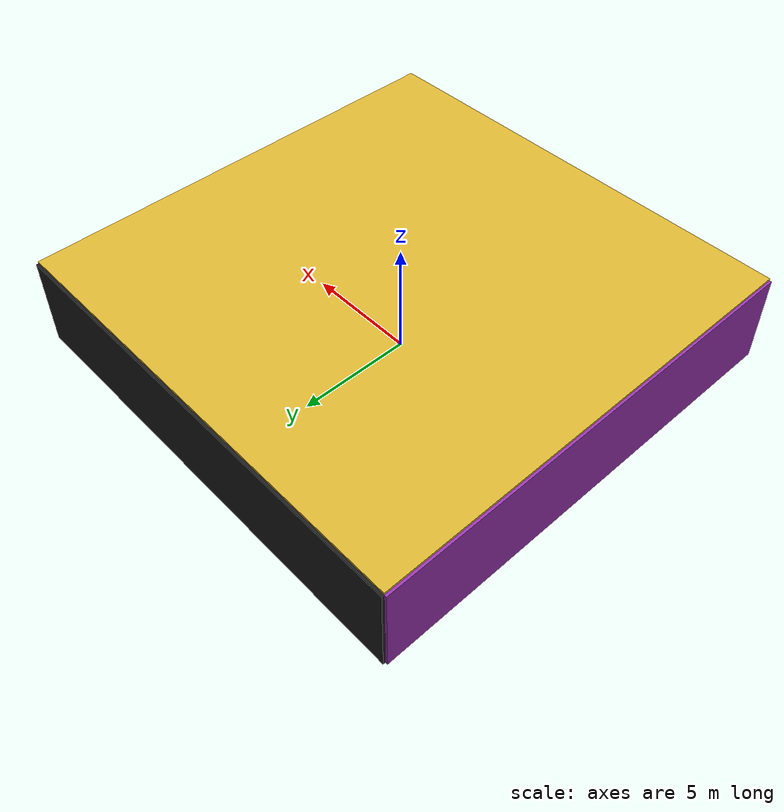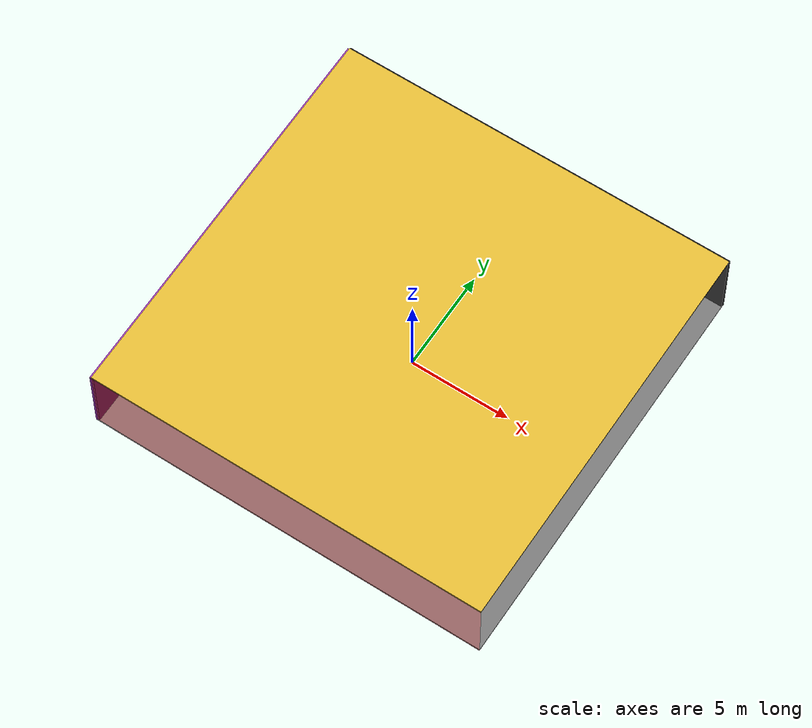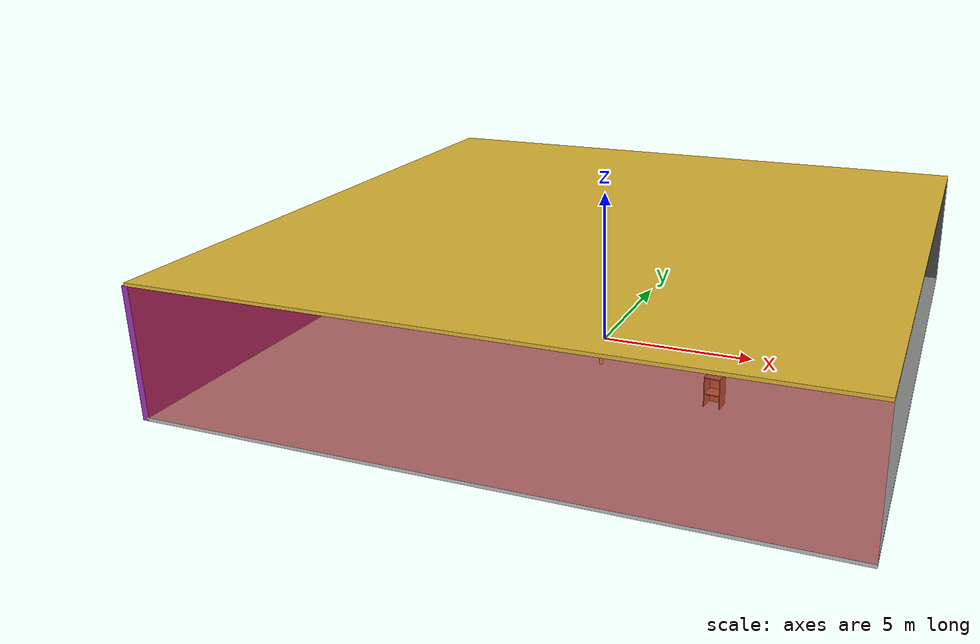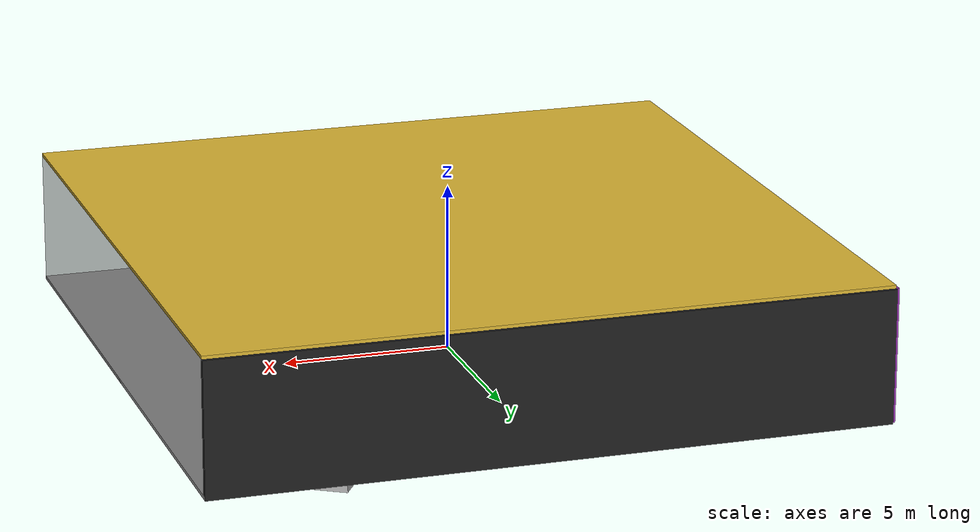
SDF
<sdf version="1.4">
 <world name="default">
  <physics type="ode">
   <max_step_size>0.001</max_step_size>
   <real_time_factor>1</real_time_factor>
   <real_time_update_rate>1000</real_time_update_rate>
   <gravity>0 0 -9.8</gravity>
  </physics>
  <scene><ambient>0.4 0.4 0.4 1</ambient><background>0.7 0.7 0.7 1</background><shadows>1</shadows></scene>
  <model name="Surrounding">
   <static>1</static>
   <link name="Ceiling">
    <collision name="Ceiling_Collision"><geometry><box><size>20 20 0.1</size></box></geometry></collision>
    <visual name="Ceiling_Visual">
     <geometry><box><size>20 20 0.1</size></box></geometry>
     <material>
      <script><uri>file://media/materials/scripts/gazebo.material</uri><name>Gazebo/Gold</name></script>
     </material>
    </visual>
    <pose>0 0 4.05 0 0 0</pose>
   </link>
   <link name="Wall_South">
    <collision name="Wall_South_Collision">
     <geometry><box><size>20 0 4</size></box></geometry>
     <pose>0 0 2 0 -0 0</pose>
    </collision>
    <visual name="Wall_South_Visual">
     <pose>0 0 2 0 -0 0</pose>
     <geometry><box><size>20 0 4</size></box></geometry>
     <material>
      <script><uri>file://media/materials/scripts/gazebo.material</uri><name>Gazebo/RedTransparent</name></script>
     </material>
    </visual>
    <velocity_decay><linear>0</linear><angular>0</angular></velocity_decay>
    <pose>0 -10 0 0 -0 0</pose>
   </link>
   <link name="Wall_East">
    <collision name="Wall_21_Collision">
     <geometry><box><size>20 0 4</size></box></geometry>
     <pose>0 0 2 0 -0 0</pose>
    </collision>
    <visual name="Wall_21_Visual">
     <pose>0 0 2 0 -0 0</pose>
     <geometry><box><size>20 0 4</size></box></geometry>
     <material>
      <script><uri>file://media/materials/scripts/gazebo.material</uri><name>Gazebo/GreyTransparent</name></script>
     </material>
    </visual>
    <velocity_decay><linear>0</linear><angular>0</angular></velocity_decay>
    <pose>10 0 0 0 -0 1.5708</pose>
   </link>
   <link name="Wall_North">
    <collision name="Wall_22_Collision">
     <geometry><box><size>20 0.2 4</size></box></geometry>
     <pose>0 0 2 0 -0 0</pose>
    </collision>
    <visual name="Wall_22_Visual">
     <pose>0 0 2 0 -0 0</pose>
     <geometry><box><size>20 0.2 4</size></box></geometry>
     <material>
      <script><uri>file://media/materials/scripts/gazebo.material</uri><name>Gazebo/Black</name></script>
     </material>
    </visual>
    <velocity_decay><linear>0</linear><angular>0</angular></velocity_decay>
    <pose>0 10 0 0 -0 0</pose>
   </link>
   <link name="Wall_West">
    <collision name="Wall_23_Collision">
     <geometry><box><size>20 0.2 4</size></box></geometry>
     <pose>0 0 2 0 -0 0</pose>
    </collision>
    <visual name="Wall_23_Visual">
     <pose>0 0 2 0 -0 0</pose>
     <geometry><box><size>20 0.2 4</size></box></geometry>
     <material>
      <script><uri>file://media/materials/scripts/gazebo.material</uri><name>Gazebo/PurpleGlow</name></script>
     </material>
    </visual>
    <velocity_decay><linear>0</linear><angular>0</angular></velocity_decay>
    <pose>-10 0 0 0 0 -1.5708</pose>
   </link>
   <link name="Ground_link">
    <collision name="collision">
     <pose>0 0 .05 0 -0 0</pose>
     <geometry><box><size>20 20 0.1</size></box></geometry>
    </collision>
    <visual name="visual">
     <pose>0 0 .05 0 -0 0</pose>
     <geometry><box><size>20 20 0.1</size></box></geometry>
     <material>
      <script><uri>file://media/materials/scripts/gazebo.material</uri><name>Gazebo/LightOn</name></script>
     </material>
    </visual>
   </link>
   <static>1</static>
  </model>
  <spherical_coordinates>
   <surface_model>EARTH_WGS84</surface_model>
   <latitude_deg>0</latitude_deg>
   <longitude_deg>0</longitude_deg>
   <elevation>0</elevation>
   <heading_deg>0</heading_deg>
  </spherical_coordinates>
  <light name="lightball_0" type="diffuse">
   <diffuse>0.8 0.8 0.8 1</diffuse>
   <specular>0.2 0.2 0.2 1</specular>
   <attenuation>
    <range>100</range>
    <constant>0.7</constant>
    <linear>0.01</linear>
    <quadratic>0.001</quadratic>
   </attenuation>
   <direction>-0.5 0.1 -0.9</direction>
   <pose>3.62173437431 -0.181243170088 1.44299212204 0 0 0</pose>
  </light>
  <light name="lightball_1" type="diffuse">
   <diffuse>0.8 0.8 0.8 1</diffuse>
   <specular>0.2 0.2 0.2 1</specular>
   <attenuation>
    <range>100</range>
    <constant>0.7</constant>
    <linear>0.01</linear>
    <quadratic>0.001</quadratic>
   </attenuation>
   <direction>-0.5 0.1 -0.9</direction>
   <pose>2.77606568129 -8.12961025185 0.876270928198 0 0 0</pose>
  </light>
  <light name="lightball_2" type="diffuse">
   <diffuse>0.8 0.8 0.8 1</diffuse>
   <specular>0.2 0.2 0.2 1</specular>
   <attenuation>
    <range>100</range>
    <constant>0.7</constant>
    <linear>0.01</linear>
    <quadratic>0.001</quadratic>
   </attenuation>
   <direction>-0.5 0.1 -0.9</direction>
   <pose>9.77905221279 7.40153080173 3.10836363329 0 0 0</pose>
  </light>
  <light name="lightball_3" type="diffuse">
   <diffuse>0.8 0.8 0.8 1</diffuse>
   <specular>0.2 0.2 0.2 1</specular>
   <attenuation>
    <range>100</range>
    <constant>0.7</constant>
    <linear>0.01</linear>
    <quadratic>0.001</quadratic>
   </attenuation>
   <direction>-0.5 0.1 -0.9</direction>
   <pose>9.05208239714 8.27279706498 1.7369514397 0 0 0</pose>
  </light>
  <light name="lightball_4" type="diffuse">
   <diffuse>0.8 0.8 0.8 1</diffuse>
   <specular>0.2 0.2 0.2 1</specular>
   <attenuation>
    <range>100</range>
    <constant>0.7</constant>
    <linear>0.01</linear>
    <quadratic>0.001</quadratic>
   </attenuation>
   <direction>-0.5 0.1 -0.9</direction>
   <pose>-5.84674041978 3.97136196417 1.90805900676 0 0 0</pose>
  </light>
  <light name="lightball_5" type="diffuse">
   <diffuse>0.8 0.8 0.8 1</diffuse>
   <specular>0.2 0.2 0.2 1</specular>
   <attenuation>
    <range>100</range>
    <constant>0.7</constant>
    <linear>0.01</linear>
    <quadratic>0.001</quadratic>
   </attenuation>
   <direction>-0.5 0.1 -0.9</direction>
   <pose>-3.65174752135 3.40541951673 1.01687639011 0 0 0</pose>
  </light>
  <light name="lightball_6" type="diffuse">
   <diffuse>0.8 0.8 0.8 1</diffuse>
   <specular>0.2 0.2 0.2 1</specular>
   <attenuation>
    <range>100</range>
    <constant>0.7</constant>
    <linear>0.01</linear>
    <quadratic>0.001</quadratic>
   </attenuation>
   <direction>-0.5 0.1 -0.9</direction>
   <pose>-4.48962337561 6.04658327159 0.800705545879 0 0 0</pose>
  </light>
  <light name="lightball_7" type="diffuse">
   <diffuse>0.8 0.8 0.8 1</diffuse>
   <specular>0.2 0.2 0.2 1</specular>
   <attenuation>
    <range>100</range>
    <constant>0.7</constant>
    <linear>0.01</linear>
    <quadratic>0.001</quadratic>
   </attenuation>
   <direction>-0.5 0.1 -0.9</direction>
   <pose>4.10759134176 6.24562190387 3.33883670738 0 0 0</pose>
  </light>
  <light name="lightball_8" type="diffuse">
   <diffuse>0.8 0.8 0.8 1</diffuse>
   <specular>0.2 0.2 0.2 1</specular>
   <attenuation>
    <range>100</range>
    <constant>0.7</constant>
    <linear>0.01</linear>
    <quadratic>0.001</quadratic>
   </attenuation>
   <direction>-0.5 0.1 -0.9</direction>
   <pose>6.19913290149 0.268616612314 1.92913395732 0 0 0</pose>
  </light>
  <light name="lightball_9" type="diffuse">
   <diffuse>0.8 0.8 0.8 1</diffuse>
   <specular>0.2 0.2 0.2 1</specular>
   <attenuation>
    <range>100</range>
    <constant>0.7</constant>
    <linear>0.01</linear>
    <quadratic>0.001</quadratic>
   </attenuation>
   <direction>-0.5 0.1 -0.9</direction>
   <pose>5.33748778029 -7.92387778087 2.49615374701 0 0 0</pose>
  </light>
  <light name="lightball_10" type="diffuse">
   <diffuse>0.8 0.8 0.8 1</diffuse>
   <specular>0.2 0.2 0.2 1</specular>
   <attenuation>
    <range>100</range>
    <constant>0.7</constant>
    <linear>0.01</linear>
    <quadratic>0.001</quadratic>
   </attenuation>
   <direction>-0.5 0.1 -0.9</direction>
   <pose>-6.72588322014 1.69952276867 2.68232251353 0 0 0</pose>
  </light>
  <light name="lightball_11" type="diffuse">
   <diffuse>0.8 0.8 0.8 1</diffuse>
   <specular>0.2 0.2 0.2 1</specular>
   <attenuation>
    <range>100</range>
    <constant>0.7</constant>
    <linear>0.01</linear>
    <quadratic>0.001</quadratic>
   </attenuation>
   <direction>-0.5 0.1 -0.9</direction>
   <pose>-1.3951146283 0.936704157418 3.42712834077 0 0 0</pose>
  </light>
  <light name="lightball_12" type="diffuse">
   <diffuse>0.8 0.8 0.8 1</diffuse>
   <specular>0.2 0.2 0.2 1</specular>
   <attenuation>
    <range>100</range>
    <constant>0.7</constant>
    <linear>0.01</linear>
    <quadratic>0.001</quadratic>
   </attenuation>
   <direction>-0.5 0.1 -0.9</direction>
   <pose>-4.0818442158 -6.74944820417 1.63978802868 0 0 0</pose>
  </light>
  <light name="lightball_13" type="diffuse">
   <diffuse>0.8 0.8 0.8 1</diffuse>
   <specular>0.2 0.2 0.2 1</specular>
   <attenuation>
    <range>100</range>
    <constant>0.7</constant>
    <linear>0.01</linear>
    <quadratic>0.001</quadratic>
   </attenuation>
   <direction>-0.5 0.1 -0.9</direction>
   <pose>-0.412167747579 2.23805518138 0.934111629471 0 0 0</pose>
  </light>
  <include><uri>model://cabinet</uri><pose>-7.77084985032 4.83235488297 0 0 0 1.88536272741</pose></include>
  <include>
   <uri>model://robocup_3Dsim_goal</uri>
   <pose>1.66144257988 -1.80274235238 0 0 0 1.91459787836</pose>
  </include>
  <include><uri>model://cabinet</uri><pose>4.71358799642 -3.75021406874 0 0 0 1.46018512003</pose></include>
  <include>
   <uri>model://construction_cone</uri>
   <pose>4.34315900094 4.88524856264 0 0 0 0.420360938744</pose>
  </include>
  <include>
   <uri>model://textured_shapes</uri>
   <pose>5.17558301833 7.42935637085 0 0 0 2.58181021955</pose>
  </include>
 </world>
</sdf>

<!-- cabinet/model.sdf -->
<sdf version="1.5">
  <model name="cabinet">
    <static>true</static>
    <link name="cabinet_bottom_plate">
      <inertial>
        <pose>0 0 -1 0 0 0</pose>
        <inertia>
          <ixx>2.050000</ixx>
          <ixy>0</ixy>
          <ixz>0</ixz>
          <iyy>2.050000</iyy>
          <iyz>0</iyz>
          <izz>2.050000</izz>
        </inertia>
        <mass>25.000000</mass>
      </inertial>
      <collision name="cabinet_bottom_plate_geom">
        <pose>0 0 0.010000 0 0 0</pose>
        <geometry>
          <box>
            <size>0.450000 0.450000 0.020000</size>
          </box>
        </geometry>
      </collision>
      <visual name="cabinet_bottom_plate_geom_visual">
        <pose>0 0 0.010000 0 0 0</pose>
        <geometry>
          <box>
            <size>0.450000 0.450000 0.020000</size>
          </box>
        </geometry>
        <material>
          <script>
            <uri>model://media/materials/scripts/gazebo.material</uri>
            <name>Gazebo/Wood</name>
          </script>
        </material>
      </visual>
      <collision name="cabinet_bottom_plate_geom_cabinet_back_plate">
        <pose>0.235000 0 0.510000 0 0 0</pose>
        <geometry>
          <box>
            <size>0.020000 0.450000 1.020000</size>
          </box>
        </geometry>
      </collision>
      <visual name="cabinet_bottom_plate_geom_cabinet_back_plate_visual">
        <pose>0.235000 0 0.510000 0 0 0</pose>
        <geometry>
          <box>
            <size>0.020000 0.450000 1.020000</size>
          </box>
        </geometry>
        <material>
          <script>
            <uri>model://media/materials/scripts/gazebo.material</uri>
            <name>Gazebo/Wood</name>
          </script>
        </material>
      </visual>
      <collision name="cabinet_bottom_plate_geom_cabinet_left_plate">
        <pose>0 0.235000 0.510000 0 0 0</pose>
        <geometry>
          <box>
            <size>0.450000 0.020000 1.020000</size>
          </box>
        </geometry>
      </collision>
      <visual name="cabinet_bottom_plate_geom_cabinet_left_plate_visual">
        <pose>0 0.235000 0.510000 0 0 0</pose>
        <geometry>
          <box>
            <size>0.450000 0.020000 1.020000</size>
          </box>
        </geometry>
        <material>
          <script>
            <uri>model://media/materials/scripts/gazebo.material</uri>
            <name>Gazebo/Wood</name>
          </script>
        </material>
      </visual>
      <collision name="cabinet_bottom_plate_geom_cabinet_middle_plate">
        <pose>0 0 0.510000 0 0 0</pose>
        <geometry>
          <box>
            <size>0.450000 0.450000 0.020000</size>
          </box>
        </geometry>
      </collision>
      <visual name="cabinet_bottom_plate_geom_cabinet_middle_plate_visual">
        <pose>0 0 0.510000 0 0 0</pose>
        <geometry>
          <box>
            <size>0.450000 0.450000 0.020000</size>
          </box>
        </geometry>
        <material>
          <script>
            <uri>model://media/materials/scripts/gazebo.material</uri>
            <name>Gazebo/Wood</name>
          </script>
        </material>
      </visual>
      <collision name="cabinet_bottom_plate_geom_cabinet_right_plate">
        <pose>0 -0.235000 0.510000 0 0 0</pose>
        <geometry>
          <box>
            <size>0.450000 0.020000 1.020000</size>
          </box>
        </geometry>
      </collision>
      <visual name="cabinet_bottom_plate_geom_cabinet_right_plate_visual">
        <pose>0 -0.235000 0.510000 0 0 0</pose>
        <geometry>
          <box>
            <size>0.450000 0.020000 1.020000</size>
          </box>
        </geometry>
        <material>
          <script>
            <uri>model://media/materials/scripts/gazebo.material</uri>
            <name>Gazebo/Wood</name>
          </script>
        </material>
      </visual>
      <collision name="cabinet_bottom_plate_geom_cabinet_top_plate">
        <pose>0 0 1.010000 0 0 0</pose>
        <geometry>
          <box>
            <size>0.450000 0.450000 0.020000</size>
          </box>
        </geometry>
      </collision>
      <visual name="cabinet_bottom_plate_geom_cabinet_top_plate_visual">
        <pose>0 0 1.010000 0 0 0</pose>
        <geometry>
          <box>
            <size>0.450000 0.450000 0.020000</size>
          </box>
        </geometry>
        <material>
          <script>
            <uri>model://media/materials/scripts/gazebo.material</uri>
            <name>Gazebo/Wood</name>
          </script>
        </material>
      </visual>
    </link>
  </model>
</sdf>

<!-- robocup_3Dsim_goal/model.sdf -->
<sdf version="1.5">
  <model name="robocup_3d_goal">
    <static>true</static>
    <link name="left_post">
      <pose>0 1.05 0.45 0 0 0</pose>
      <collision name="collision">
        <geometry>
          <cylinder>
            <radius>0.05</radius>
            <length>0.9</length>
          </cylinder>
        </geometry>
      </collision>
      <visual name="visual">
        <geometry>
          <cylinder>
            <radius>0.05</radius>
            <length>0.9</length>
          </cylinder>
        </geometry>
        <material>
          <script>
            <uri>file://media/materials/scripts/gazebo.material</uri>
            <name>Gazebo/ZincYellow</name>
          </script>
        </material>
      </visual>
    </link>
    <link name="left_support_horiz_lower">
      <pose>0.30 1.05 0.01 0 0 0</pose>
      <collision name="collision">
        <geometry>
          <box>
            <size>0.50 0.02 0.02</size>
          </box>
        </geometry>
      </collision>
      <visual name="visual">
        <geometry>
          <box>
            <size>0.50 0.02 0.02</size>
          </box>
        </geometry>
        <material>
          <script>
            <uri>file://media/materials/scripts/gazebo.material</uri>
            <name>Gazebo/White</name>
          </script>
        </material>
      </visual>
    </link>
    <link name="left_support_horiz_upper">
      <pose>0.30 1.05 0.79 0 0 0</pose>
      <collision name="collision">
        <geometry>
          <box>
            <size>0.50 0.02 0.02</size>
          </box>
        </geometry>
      </collision>
      <visual name="visual">
        <geometry>
          <box>
            <size>0.50 0.02 0.02</size>
          </box>
        </geometry>
        <material>
          <script>
            <uri>file://media/materials/scripts/gazebo.material</uri>
            <name>Gazebo/White</name>
          </script>
        </material>
      </visual>
    </link>
    <link name="left_support_vertical">
      <pose>0.56 1.05 0.4 0 1.5708 0</pose>
      <collision name="collision">
        <geometry>
          <box>
            <size>0.80 0.02 0.02</size>
          </box>
        </geometry>
      </collision>
      <visual name="visual">
        <geometry>
          <box>
            <size>0.80 0.02 0.02</size>
          </box>
        </geometry>
        <material>
          <script>
            <uri>file://media/materials/scripts/gazebo.material</uri>
            <name>Gazebo/White</name>
          </script>
        </material>
      </visual>
    </link>
    <link name="right_support_horiz_lower">
      <pose>0.30 -1.05 0.01 0 0 0</pose>
      <collision name="collision">
        <geometry>
          <box>
            <size>0.50 0.02 0.02</size>
          </box>
        </geometry>
      </collision>
      <visual name="visual">
        <geometry>
          <box>
            <size>0.50 0.02 0.02</size>
          </box>
        </geometry>
        <material>
          <script>
            <uri>file://media/materials/scripts/gazebo.material</uri>
            <name>Gazebo/White</name>
          </script>
        </material>
      </visual>
    </link>
    <link name="right_support_horiz_upper">
      <pose>0.30 -1.05 0.79 0 0 0</pose>
      <collision name="collision">
        <geometry>
          <box>
            <size>0.50 0.02 0.02</size>
          </box>
        </geometry>
      </collision>
      <visual name="visual">
        <geometry>
          <box>
            <size>0.50 0.02 0.02</size>
          </box>
        </geometry>
        <material>
          <script>
            <uri>file://media/materials/scripts/gazebo.material</uri>
            <name>Gazebo/White</name>
          </script>
        </material>
      </visual>
    </link>
    <link name="right_support_vertical">
      <pose>0.56 -1.05 0.4 0 1.5708 0</pose>
      <collision name="collision">
        <geometry>
          <box>
            <size>0.80 0.02 0.02</size>
          </box>
        </geometry>
      </collision>
      <visual name="visual">
        <geometry>
          <box>
            <size>0.80 0.02 0.02</size>
          </box>
        </geometry>
        <material>
          <script>
            <uri>file://media/materials/scripts/gazebo.material</uri>
            <name>Gazebo/White</name>
          </script>
        </material>
      </visual>
    </link>
    <link name="center_support_horiz_lower">
      <pose>0.56 0 0.01 0 1.5708 0</pose>
      <collision name="collision">
        <geometry>
          <box>
            <size>0.02 2.08 0.02</size>
          </box>
        </geometry>
      </collision>
      <visual name="visual">
        <geometry>
          <box>
            <size>0.02 2.08 0.02</size>
          </box>
        </geometry>
        <material>
          <script>
            <uri>file://media/materials/scripts/gazebo.material</uri>
            <name>Gazebo/White</name>
          </script>
        </material>
      </visual>
    </link>
    <link name="center_support_horiz_upper">
      <pose>0.56 0 0.79 0 1.5708 0</pose>
      <collision name="collision">
        <geometry>
          <box>
            <size>0.02 2.08 0.02</size>
          </box>
        </geometry>
      </collision>
      <visual name="visual">
        <geometry>
          <box>
            <size>0.02 2.08 0.02</size>
          </box>
        </geometry>
        <material>
          <script>
            <uri>file://media/materials/scripts/gazebo.material</uri>
            <name>Gazebo/White</name>
          </script>
        </material>
      </visual>
    </link>
    <link name="right_post">
      <pose>0 -1.05 0.45 0 0 0</pose>
      <collision name="collision">
        <geometry>
          <cylinder>
            <radius>0.05</radius>
            <length>0.9</length>
          </cylinder>
        </geometry>
      </collision>
      <visual name="visual">
        <geometry>
          <cylinder>
            <radius>0.05</radius>
            <length>0.9</length>
          </cylinder>
        </geometry>
        <material>
          <script>
            <uri>file://media/materials/scripts/gazebo.material</uri>
            <name>Gazebo/ZincYellow</name>
          </script>
        </material>
      </visual>
    </link>
    <link name="crossbar">
      <pose>0 0 0.85 1.57 1.57 0</pose>
      <collision name="collision">
        <geometry>
          <cylinder>
            <radius>0.05</radius>
            <length>2.0</length>
          </cylinder>
        </geometry>
      </collision>
      <visual name="visual">
        <geometry>
          <cylinder>
            <radius>0.05</radius>
            <length>2.0</length>
          </cylinder>
        </geometry>
        <material>
          <script>
            <uri>file://media/materials/scripts/gazebo.material</uri>
            <name>Gazebo/ZincYellow</name>
          </script>
        </material>
      </visual>
    </link>
    <link name="center_net">
      <pose>0.56 0 0.40 0 0 0</pose>
      <collision name="collision">
        <geometry>
          <box>
            <size>0.01 2.1 0.80</size>
          </box>
        </geometry>
      </collision>
      <visual name="visual">
        <geometry>
          <box>
            <size>0.01 2.1 0.80</size>
          </box>
        </geometry>
        <material>
          <script>
            <uri>model://../model_source/models/robocup09_spl_field/materials/scripts/</uri>
            <uri>model://../model_source/models/robocup09_spl_field/materials/textures/</uri>
            <name>RoboCup/Net</name>
          </script>
        </material>
      </visual>
    </link>
    <link name="left_net">
      <pose>0.30 1.05 0.40 0 0 0</pose>
      <collision name="collision">
        <geometry>
          <box>
            <size>0.50 0.01 0.76</size>
          </box>
        </geometry>
      </collision>
      <visual name="visual">
        <geometry>
          <box>
            <size>0.50 0.01 0.76</size>
          </box>
        </geometry>
        <material>
          <script>
            <uri>model://../model_source/models/robocup09_spl_field/materials/scripts/</uri>
            <uri>model://../model_source/models/robocup09_spl_field/materials/textures/</uri>
            <name>RoboCup/Net</name>
          </script>
        </material>
      </visual>
    </link>
    <link name="right_net">
      <pose>0.30 -1.05 0.40 0 0 0</pose>
      <collision name="collision">
        <geometry>
          <box>
            <size>0.50 0.01 0.76</size>
          </box>
        </geometry>
      </collision>
      <visual name="visual">
        <geometry>
          <box>
            <size>0.50 0.01 0.76</size>
          </box>
        </geometry>
        <material>
          <script>
            <uri>model://../model_source/models/robocup09_spl_field/materials/scripts/</uri>
            <uri>model://../model_source/models/robocup09_spl_field/materials/textures/</uri>
            <name>RoboCup/Net</name>
          </script>
        </material>
      </visual>
    </link>
  </model>
</sdf>

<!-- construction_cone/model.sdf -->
<sdf version="1.5">
  <model name="Construction Cone">
    <link name="link">
      <collision name="collision">
        <geometry>
          <mesh>
            <scale>10 10 10</scale>
            <uri>file://isr-testbed/construction_cone/meshes/construction_cone.dae</uri>
          </mesh>
        </geometry>
      </collision>
      <visual name="visual">
        <geometry>
          <mesh>
            <scale>10 10 10</scale>
            <uri>file://isr-testbed/construction_cone/meshes/construction_cone.dae</uri>
          </mesh>
        </geometry>
      </visual>
    </link>
  </model>
</sdf>

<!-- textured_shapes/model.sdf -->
<sdf version="1.6">
  <model name="textured_shapes">
    <pose>0 0 0.5 0 0 0</pose>
    <link name="box">
      <pose>0 -1.5 0 0 0 0</pose>
      <collision name="collision">
        <geometry>
          <box>
            <size>1 1 1</size>
          </box>
        </geometry>
      </collision>
      <visual name="visual">
        <geometry>
          <box>
            <size>1 1 1</size>
          </box>
        </geometry>
        <material>
          <script>
            <uri>model://../model_source/models/textured_shapes/materials/scripts</uri>
            <uri>model://../model_source/models/textured_shapes/materials/textures</uri>
            <name>TexturedShape/Squares</name>
          </script>
        </material>
      </visual>
    </link>
    <link name="sphere">
      <collision name="collision">
        <geometry>
          <sphere>
            <radius>0.5</radius>
          </sphere>
        </geometry>
      </collision>
      <visual name="visual">
        <geometry>
          <sphere>
            <radius>0.5</radius>
          </sphere>
        </geometry>
        <material>
          <script>
            <uri>model://../model_source/models/textured_shapes/materials/scripts</uri>
            <uri>model://../model_source/models/textured_shapes/materials/textures</uri>
            <name>TexturedShape/Squares</name>
          </script>
        </material>
      </visual>
    </link>
    <link name="cylinder">
      <pose>0 1.5 0 0 0 0</pose>
      <collision name="collision">
        <geometry>
          <cylinder>
            <radius>0.5</radius>
            <length>1</length>
          </cylinder>
        </geometry>
      </collision>
      <visual name="visual">
        <geometry>
          <cylinder>
            <radius>0.5</radius>
            <length>1</length>
          </cylinder>
        </geometry>
        <material>
          <script>
            <uri>model://../model_source/models/textured_shapes/materials/scripts</uri>
            <uri>model://../model_source/models/textured_shapes/materials/textures</uri>
            <name>TexturedShape/Squares</name>
          </script>
        </material>
      </visual>
    </link>
  </model>
</sdf>
